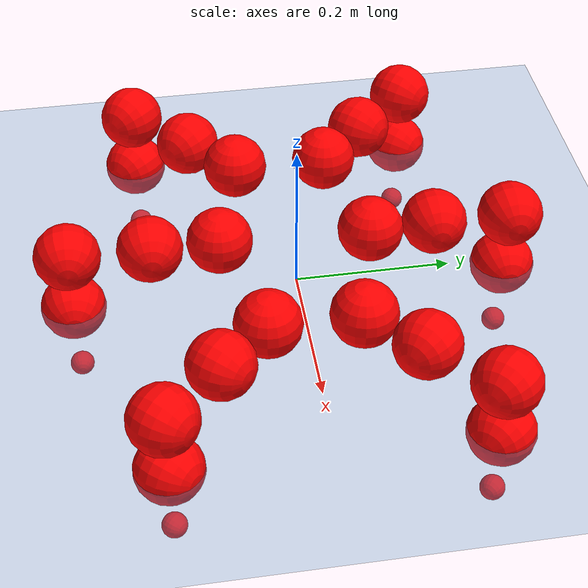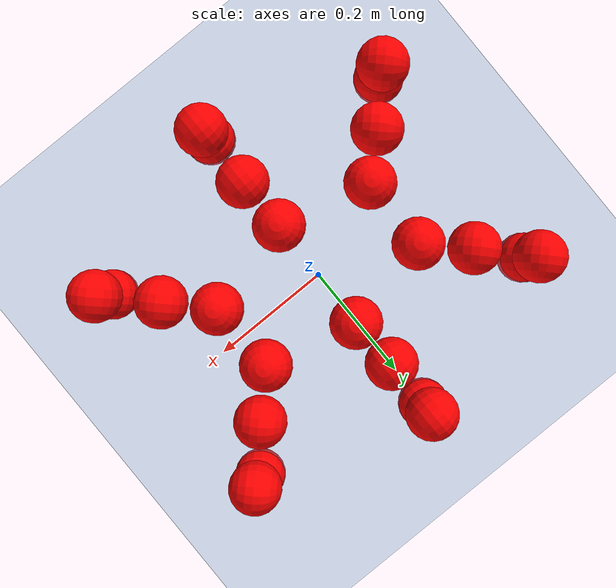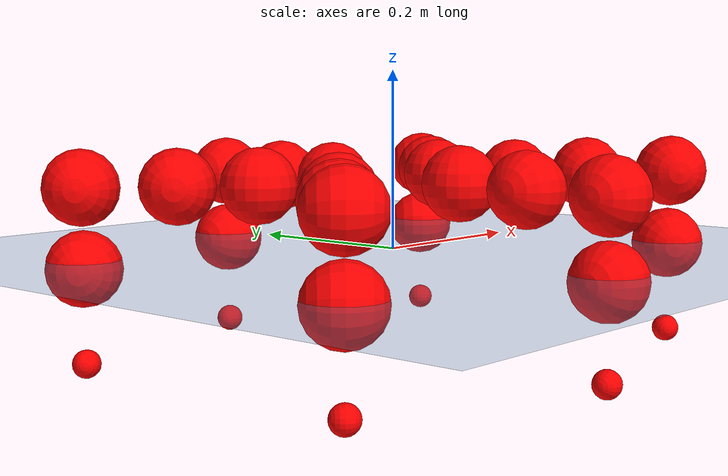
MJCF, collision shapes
<mujoco model="Golem">
  <compiler angle="radian" assetdir="assets" balanceinertia="true" inertiafromgeom="false"/>

  <option timestep="0.005" density="1.2" viscosity="2e-05"/>

  <size nkey="1"/>

  <visual>
    <quality shadowsize="8192"/>
    <map shadowclip="0.5"/>
  </visual>

  <default>
    <default class="/">
      <joint armature="0.01" damping="0.01" frictionloss="0.01"/>
      <geom contype="0" conaffinity="0" group="1" solref="-1000 -80"/>
      <site size="0.01 0.005 0.005" group="5"/>
      <general forcelimited="true" biastype="affine" gainprm="25" biasprm="0 -25 -0.5"/>
      <default class="visual">
        <geom type="mesh" group="2"/>
      </default>
      <default class="collision">
        <geom group="3"/>
      </default>
      <default class="foot">
        <geom size="0.01 0 0" condim="6" group="4" priority="1" solimp="0.015 1 0.01"/>
      </default>
      <default class="reward_collision_sphere">
        <geom group="5" rgba="1 0 0 1"/>
      </default>
    </default>
  </default>

  <asset>
    <texture type="skybox" colorspace="auto" name="//unnamed_texture_0" builtin="gradient" rgb1="0.95 0.95 0.95" rgb2="0.95 0.95 0.95" width="100" height="600"/>
    <texture type="2d" colorspace="auto" name="texplane" builtin="checker" rgb1="0.345 0.575 0.748" rgb2="0.345 0.575 0.748" markrgb="1 1 1" width="512" height="512"/>
    <material name="MatPlane" class="/" texture="texplane" texuniform="true" texrepeat="2 2" specular="0.9"/>
    <mesh name="body" class="/" file="body.stl" scale="0.001 0.001 0.001"/>
    <mesh name="coxa" class="/" file="coxa.stl" scale="0.001 0.001 0.001"/>
    <mesh name="femur" class="/" file="femur.stl" scale="0.001 0.001 0.001"/>
    <mesh name="tibia" class="/" file="tibia.stl" scale="0.001 0.001 0.001"/>
    <mesh name="tarsus" class="/" file="tarsus.stl" scale="0.001 0.001 0.001"/>
  </asset>

  <worldbody>
    <geom name="floor" class="/" size="100 100 0.125" type="plane" group="0" material="MatPlane"/>
    <light name="toplight_shadow" class="/" pos="0 0 5" dir="0.0990148 0.0990148 -0.990148" type="directional" ambient="0.04 0.04 0.04" diffuse="0.55 0.55 0.55" specular="0.12 0.12 0.12"/>
    <light name="toplight_fill" class="/" pos="0 0 5" dir="0.0990148 0.0990148 -0.990148" type="directional" castshadow="false" ambient="0.04 0.04 0.04" diffuse="0.3 0.3 0.3" specular="0.08 0.08 0.08"/>
    <body name="trunk" pos="8.36475e-05 -0.000869657 -0.00239171" quat="1 -0.000481718 -0.000536511 0.000161693">
      <inertial pos="0.00318369 -0.00310623 -0.000332547" quat="0.999925 0.000371154 -0.0114806 0.00427435" mass="3.96228" diaginertia="0.00763667 0.00673132 0.0270453"/>
      <joint name="//unnamed_joint_0" type="free"/>
      <geom name="//unnamed_geom_1" class="/" pos="0 0 0.078108" quat="1 0 0 0" type="mesh" rgba="0.9 0.9 0.9 1" mesh="body"/>
      <site name="imu" class="/" pos="0.114246 0.00630859 0.118484" size="0.0103787"/>
      <camera name="track" class="/" pos="0 -1.87399 0" quat="0.707107 0.707107 0 0" mode="trackcom"/>
      <camera name="ego_camera" class="/" pos="0.124304 0 0.122044" quat="-0.5 -0.5 0.5 0.5"/>
      <body name="coxa_RR" pos="-0.170935 -0.0784841 0.0787153" quat="0.382999 -0.000313049 0.000204403 -0.923749">
        <inertial pos="0.00180067 0.00239826 -0.00244167" quat="0.999903 0.0029093 0.00178834 -0.0134727" mass="0.220413" diaginertia="0.0075707 0.00708589 0.0259238"/>
        <joint name="coxa_joint_RR" class="/" pos="0 0 0" axis="-0.00676367 -0.00476272 -0.999966" stiffness="0.00735357" range="-3.08355 3.09169" armature="0.0108117" damping="0" frictionloss="0.0117545"/>
        <geom name="//unnamed_geom_2" class="/" type="mesh" rgba="0.2 0.2 0.2 1" mesh="coxa"/>
        <geom name="//unnamed_geom_3" class="reward_collision_sphere" size="0.0415149" pos="-0.0286856 0 0"/>
        <body name="femur_RR" pos="0.0544234 -0.00216246 -0.00100068" quat="0.500008 -0.499995 0.500003 0.499994">
          <inertial pos="-0.000295745 -0.000474977 0.00269568" quat="0.999924 -0.0122935 0.000400269 0.000198453" mass="0.219529" diaginertia="0.00816727 0.00689838 0.0267497"/>
          <joint name="femur_joint_RR" class="/" pos="0 0 0" axis="0.000113646 -0.000526016 -1" range="-3.09099 3.08993" armature="0.0109579" damping="0.0177387" frictionloss="0.0102278"/>
          <geom name="//unnamed_geom_4" class="/" type="mesh" rgba="0.9 0.9 0.9 1" mesh="femur"/>
          <geom name="//unnamed_geom_5" class="reward_collision_sphere" size="0.0415149"/>
          <body name="tibia_RR" pos="-0.00201501 -0.0987502 0.00167792" quat="-8.21889e-05 1 -0.000160319 -0.00027997">
            <inertial pos="0.000341067 0.000179103 0.00102244" quat="1 -0.000765005 -0.000456979 -0.000374887" mass="0.220636" diaginertia="0.00787927 0.0071146 0.0265431"/>
            <joint name="tibia_joint_RR" class="/" pos="0 0 0" axis="0.00165716 -0.00234521 0.999996" range="-3.13691 3.16563" armature="0.0088658" damping="0.0156097" frictionloss="0.00975736"/>
            <geom name="//unnamed_geom_6" class="/" type="mesh" rgba="0.2 0.2 0.2 1" mesh="tibia"/>
            <geom name="//unnamed_geom_7" class="reward_collision_sphere" size="0.0415149"/>
            <body name="tarsus_RR" pos="0.08356 0.00170148 0.000285134" quat="0.999999 0.0013585 -0.000155589 -8.85013e-05">
              <inertial pos="0.0605296 -0.000633336 0.00216001" quat="0.506213 0.493024 0.492998 0.507571" mass="0.221425" diaginertia="0.00801114 0.00696115 0.0264366"/>
              <joint name="tarsus_joint_RR" class="/" pos="0 0 0" axis="0.00872331 0.00869895 0.999924" range="-3.19348 3.14722" armature="0.00913839" damping="0.0153951" frictionloss="0.0105307"/>
              <geom name="//unnamed_geom_8" class="/" type="mesh" rgba="0.9 0.9 0.9 1" mesh="tarsus"/>
              <geom name="foot_1" class="foot" size="0.00992932" pos="0.107093 0 0" quat="0 -0.707107 0 0.707107"/>
              <geom name="//unnamed_geom_10" class="reward_collision_sphere" size="0.0415149"/>
              <geom name="//unnamed_geom_11" class="reward_collision_sphere" size="0.0155681" pos="0.10279 0 0"/>
              <site name="foot_1" class="foot" pos="0.107093 0 0" quat="0 -0.707107 0 0.707107" size="0.0103787"/>
            </body>
          </body>
        </body>
      </body>
      <body name="coxa_RM" pos="-0.00101026 -0.124342 0.0806074" quat="0.70685 -0.000504281 0.000394056 -0.707363">
        <inertial pos="-0.000158696 0.000497296 -0.00110696" quat="0.999994 -0.00115936 -0.00311023 0.000616033" mass="0.213705" diaginertia="0.00783489 0.00715399 0.0274011"/>
        <joint name="coxa_joint_RM" class="/" pos="0 0 0" axis="0.00153819 0.00209836 -0.999997" range="-3.13361 3.08354" armature="0.00929522" damping="0.0220872" frictionloss="0.0115942"/>
        <geom name="//unnamed_geom_12" class="/" type="mesh" rgba="0.2 0.2 0.2 1" mesh="coxa"/>
        <geom name="//unnamed_geom_13" class="reward_collision_sphere" size="0.0415149" pos="-0.0286856 0 0"/>
        <body name="femur_RM" pos="0.0579281 0.00105935 -0.00180526" quat="0.5 -0.499994 0.500019 0.499986">
          <inertial pos="-0.000591274 0.00199465 -0.000550064" quat="0.999991 -0.00212976 -0.003147 -0.00170093" mass="0.231992" diaginertia="0.00791083 0.00733628 0.026222"/>
          <joint name="femur_joint_RM" class="/" pos="0 0 0" axis="0.00239437 0.000735758 -0.999997" stiffness="0.000503418" range="-3.11105 3.19473" armature="0.0114663" damping="0.0205546" frictionloss="0.0107505"/>
          <geom name="//unnamed_geom_14" class="/" type="mesh" rgba="0.9 0.9 0.9 1" mesh="femur"/>
          <geom name="//unnamed_geom_15" class="reward_collision_sphere" size="0.0415149"/>
          <body name="tibia_RM" pos="2.4583e-05 -0.101146 -0.000850634" quat="2.20753e-06 1 6.01243e-06 -9.10871e-06">
            <inertial pos="-0.000652576 0.000261511 0.00176133" quat="0.999979 -0.00557288 0.000510979 0.0033721" mass="0.224577" diaginertia="0.00810383 0.00724346 0.0261746"/>
            <joint name="tibia_joint_RM" class="/" pos="0 0 0" axis="0.000409608 0.000302331 1" stiffness="0.000737372" range="-3.08518 3.18349" armature="0.0103662" damping="0.0191291" frictionloss="0.0105031"/>
            <geom name="//unnamed_geom_16" class="/" type="mesh" rgba="0.2 0.2 0.2 1" mesh="tibia"/>
            <geom name="//unnamed_geom_17" class="reward_collision_sphere" size="0.0415149"/>
            <body name="tarsus_RM" pos="0.0855497 0.000902562 0.00200269" quat="0.999999 -0.000264057 -0.000985454 -0.000319868">
              <inertial pos="0.0568224 -0.00192012 -0.000331559" quat="0.50202 0.496987 0.498784 0.50219" mass="0.229469" diaginertia="0.00810442 0.0072588 0.0270287"/>
              <joint name="tarsus_joint_RM" class="/" pos="0 0 0" axis="0.0081301 0.0104144 0.999913" range="-3.08666 3.11031" armature="0.00892713" damping="0.00880586" frictionloss="0.0112654"/>
              <geom name="//unnamed_geom_18" class="/" type="mesh" rgba="0.9 0.9 0.9 1" mesh="tarsus"/>
              <geom name="foot_2" class="foot" size="0.00939826" pos="0.107093 0 0" quat="0 -0.707107 0 0.707107"/>
              <geom name="//unnamed_geom_20" class="reward_collision_sphere" size="0.0415149"/>
              <geom name="//unnamed_geom_21" class="reward_collision_sphere" size="0.0155681" pos="0.10279 0 0"/>
              <site name="foot_2" class="foot" pos="0.107093 0 0" quat="0 -0.707107 0 0.707107" size="0.0103787"/>
            </body>
          </body>
        </body>
      </body>
      <body name="coxa_RF" pos="0.172939 -0.076792 0.0796611" quat="0.923878 -0.000106525 -7.43947e-05 -0.382687">
        <inertial pos="-1.74766e-05 -0.000551905 -0.00166089" quat="0.999923 0.00785361 0.00931461 0.00249167" mass="0.220907" diaginertia="0.00784951 0.00711843 0.0263863"/>
        <joint name="coxa_joint_RF" class="/" pos="0 0 0" axis="-0.00514283 0.00742111 -0.999959" range="-3.14971 3.08957" armature="0.00992637" damping="0.00444794" frictionloss="0.0106913"/>
        <geom name="//unnamed_geom_22" class="/" type="mesh" rgba="0.2 0.2 0.2 1" mesh="coxa"/>
        <geom name="//unnamed_geom_23" class="reward_collision_sphere" size="0.0415149" pos="-0.0286856 0 0"/>
        <body name="femur_RF" pos="0.0567597 -0.00152257 0.00209478" quat="0.499335 -0.500293 0.500112 0.50026">
          <inertial pos="0.000635369 -0.00105207 -0.00182447" quat="0.999908 -0.00617999 0.0104237 0.00611081" mass="0.221807" diaginertia="0.00766121 0.00698498 0.0262769"/>
          <joint name="femur_joint_RF" class="/" pos="0 0 0" axis="-0.00419991 -0.0130145 -0.999906" range="-3.08403 3.1474" armature="0.0101114" damping="0.00900821" frictionloss="0.010462"/>
          <geom name="//unnamed_geom_24" class="/" type="mesh" rgba="0.9 0.9 0.9 1" mesh="femur"/>
          <geom name="//unnamed_geom_25" class="reward_collision_sphere" size="0.0415149"/>
          <body name="tibia_RF" pos="-0.00137895 -0.101198 0.000817157" quat="0.00132564 0.999999 4.98378e-05 -0.000178988">
            <inertial pos="0.000311881 -0.000398817 -0.00152418" quat="0.999994 -0.00209659 0.00160295 0.00238936" mass="0.234511" diaginertia="0.00783707 0.00718705 0.0273031"/>
            <joint name="tibia_joint_RF" class="/" pos="0 0 0" axis="0.00105277 0.00198295 0.999997" stiffness="0.0208438" range="-3.1954 3.12229" armature="0.0098505" damping="0.0351943" frictionloss="0.00903875"/>
            <geom name="//unnamed_geom_26" class="/" type="mesh" rgba="0.2 0.2 0.2 1" mesh="tibia"/>
            <geom name="//unnamed_geom_27" class="reward_collision_sphere" size="0.0415149"/>
            <body name="tarsus_RF" pos="0.0856474 -0.00307564 0.000658451" quat="1 4.1902e-05 -3.25053e-05 -3.89049e-05">
              <inertial pos="0.0600515 0.00110893 8.6053e-05" quat="0.496981 0.498417 0.493593 0.510838" mass="0.213618" diaginertia="0.00744413 0.00685882 0.0263465"/>
              <joint name="tarsus_joint_RF" class="/" pos="0 0 0" axis="0.00111411 -0.00277392 0.999996" stiffness="0.0076441" range="-3.15118 3.10774" armature="0.00928693" damping="0.00839303" frictionloss="0.0117634"/>
              <geom name="//unnamed_geom_28" class="/" type="mesh" rgba="0.9 0.9 0.9 1" mesh="tarsus"/>
              <geom name="foot_3" class="foot" size="0.0113169" pos="0.107093 0 0" quat="0 -0.707107 0 0.707107"/>
              <geom name="//unnamed_geom_30" class="reward_collision_sphere" size="0.0415149"/>
              <geom name="//unnamed_geom_31" class="reward_collision_sphere" size="0.0155681" pos="0.10279 0 0"/>
              <site name="foot_3" class="foot" pos="0.107093 0 0" quat="0 -0.707107 0 0.707107" size="0.0103787"/>
            </body>
          </body>
        </body>
      </body>
      <body name="coxa_LR" pos="-0.169104 0.080671 0.0793172" quat="0.382906 0.000447681 -0.000246167 0.923787">
        <inertial pos="-0.00264005 0.00125088 -0.000881057" quat="0.999976 0.00326547 0.00311927 -0.00518016" mass="0.229159" diaginertia="0.00786872 0.00712095 0.027573"/>
        <joint name="coxa_joint_LR" class="/" pos="0 0 0" axis="-0.00966151 -0.00395715 -0.999945" stiffness="0.0141539" range="-3.19522 3.14954" armature="0.0103825" damping="0.013973" frictionloss="0.0114402"/>
        <geom name="//unnamed_geom_32" class="/" type="mesh" rgba="0.2 0.2 0.2 1" mesh="coxa"/>
        <geom name="//unnamed_geom_33" class="reward_collision_sphere" size="0.0415149" pos="-0.0286856 0 0"/>
        <body name="femur_LR" pos="0.0572144 0.00175237 -0.000246344" quat="0.49916 -0.499929 0.499962 0.500948">
          <inertial pos="-0.000186144 0.0019954 0.00238815" quat="1 -0.000242721 -5.42918e-05 9.75465e-05" mass="0.210917" diaginertia="0.00799146 0.00685051 0.0256792"/>
          <joint name="femur_joint_LR" class="/" pos="0 0 0" axis="0.00707797 -0.00158845 0.999974" range="-3.19576 3.19289" armature="0.0098365" damping="0.0123603" frictionloss="0.00989621"/>
          <geom name="//unnamed_geom_34" class="/" type="mesh" rgba="0.9 0.9 0.9 1" mesh="femur"/>
          <geom name="//unnamed_geom_35" class="reward_collision_sphere" size="0.0415149"/>
          <body name="tibia_LR" pos="0.000347928 -0.101278 -0.00232803" quat="0.00122172 0.999999 -0.000492602 -8.48589e-05">
            <inertial pos="-0.0026715 0.00265182 0.00174451" quat="0.999941 0.00907797 0.00111098 0.00588653" mass="0.230213" diaginertia="0.00829542 0.00763193 0.0266923"/>
            <joint name="tibia_joint_LR" class="/" pos="0 0 0" axis="0.0038555 0.00442528 -0.999983" range="-3.14151 3.17861" armature="0.00950304" damping="0" frictionloss="0.010375"/>
            <geom name="//unnamed_geom_36" class="/" type="mesh" rgba="0.2 0.2 0.2 1" mesh="tibia"/>
            <geom name="//unnamed_geom_37" class="reward_collision_sphere" size="0.0415149"/>
            <body name="tarsus_LR" pos="0.0865542 -0.00166624 -0.000444218" quat="1 -9.93623e-05 6.19447e-05 -2.5194e-05">
              <inertial pos="0.0572417 -0.00084552 0.00129066" quat="0.499631 0.500202 0.500824 0.499342" mass="0.215441" diaginertia="0.00772447 0.00689588 0.0271171"/>
              <joint name="tarsus_joint_LR" class="/" pos="0 0 0" axis="0.00277663 0.00383976 -0.999989" stiffness="0.0100186" range="-3.17175 3.19025" armature="0.0103696" damping="0.00787511" frictionloss="0.00903747"/>
              <geom name="//unnamed_geom_38" class="/" type="mesh" rgba="0.9 0.9 0.9 1" mesh="tarsus"/>
              <geom name="foot_4" class="foot" size="0.0114404" pos="0.107093 0 0" quat="0.707107 0 -0.707107 0"/>
              <geom name="//unnamed_geom_40" class="reward_collision_sphere" size="0.0415149"/>
              <geom name="//unnamed_geom_41" class="reward_collision_sphere" size="0.0155681" pos="0.10279 0 0"/>
              <site name="foot_4" class="foot" pos="0.107093 0 0" quat="0.707107 0 -0.707107 0" size="0.0103787"/>
            </body>
          </body>
        </body>
      </body>
      <body name="coxa_LM" pos="0.0014617 0.123197 0.0773232" quat="0.706656 -0.000471077 0.000714555 0.707557">
        <inertial pos="-0.00048573 -0.000734586 -0.000126188" quat="0.999984 -0.0052321 -0.00202322 0.00102697" mass="0.221771" diaginertia="0.00849524 0.00746613 0.0276687"/>
        <joint name="coxa_joint_LM" class="/" pos="0 0 0" axis="0.0128742 0.00409333 -0.999909" range="-3.16238 3.16" armature="0.0117683" damping="0.009734" frictionloss="0.0105184"/>
        <geom name="//unnamed_geom_42" class="/" type="mesh" rgba="0.2 0.2 0.2 1" mesh="coxa"/>
        <geom name="//unnamed_geom_43" class="reward_collision_sphere" size="0.0415149" pos="-0.0286856 0 0"/>
        <body name="femur_LM" pos="0.0539314 0.00257857 -0.000456205" quat="0.49986 -0.499752 0.500269 0.500118">
          <inertial pos="-0.00189526 0.000749918 0.000902844" quat="0.999956 -0.00212653 0.00574754 -0.00710853" mass="0.218504" diaginertia="0.00769495 0.00699717 0.0258051"/>
          <joint name="femur_joint_LM" class="/" pos="0 0 0" axis="-0.0110434 -0.00374184 0.999932" stiffness="0.00917195" range="-3.10187 3.15155" armature="0.00917308" damping="0.00985704" frictionloss="0.00973298"/>
          <geom name="//unnamed_geom_44" class="/" type="mesh" rgba="0.9 0.9 0.9 1" mesh="femur"/>
          <geom name="//unnamed_geom_45" class="reward_collision_sphere" size="0.0415149"/>
          <body name="tibia_LM" pos="-0.000756662 -0.0989493 -0.000621663" quat="0.000432455 0.999999 0.000985504 -0.00104374">
            <inertial pos="0.00294676 -0.000741759 -0.000111477" quat="0.999989 0.00198864 -0.00414582 -0.00104691" mass="0.234619" diaginertia="0.00808578 0.00733102 0.0274265"/>
            <joint name="tibia_joint_LM" class="/" pos="0 0 0" axis="0.00548804 0.00380802 -0.999978" stiffness="0.00534522" range="-3.11164 3.08321" armature="0.0095044" damping="0.0164504" frictionloss="0.0111482"/>
            <geom name="//unnamed_geom_46" class="/" type="mesh" rgba="0.2 0.2 0.2 1" mesh="tibia"/>
            <geom name="//unnamed_geom_47" class="reward_collision_sphere" size="0.0415149"/>
            <body name="tarsus_LM" pos="0.083274 -0.00186269 -0.000418462" quat="1 7.94884e-05 0.000162149 1.86554e-05">
              <inertial pos="0.0544408 -0.00110955 -0.000715989" quat="0.496641 0.492151 0.500188 0.51083" mass="0.229483" diaginertia="0.00790219 0.00745871 0.026575"/>
              <joint name="tarsus_joint_LM" class="/" pos="0 0 0" axis="0.00897701 -0.01055 -0.999904" range="-3.13524 3.13117" armature="0.00966661" damping="0.00468724" frictionloss="0.010101"/>
              <geom name="//unnamed_geom_48" class="/" type="mesh" rgba="0.9 0.9 0.9 1" mesh="tarsus"/>
              <geom name="foot_5" class="foot" size="0.0114818" pos="0.107093 0 0" quat="0.707107 0 -0.707107 0"/>
              <geom name="//unnamed_geom_50" class="reward_collision_sphere" size="0.0415149"/>
              <geom name="//unnamed_geom_51" class="reward_collision_sphere" size="0.0155681" pos="0.10279 0 0"/>
              <site name="foot_5" class="foot" pos="0.107093 0 0" quat="0.707107 0 -0.707107 0" size="0.0103787"/>
            </body>
          </body>
        </body>
      </body>
      <body name="coxa_LF" pos="0.170277 0.0780664 0.0763675" quat="0.923966 0.000264175 -0.000974192 0.382474">
        <inertial pos="-9.36995e-05 0.00112394 -0.00209299" quat="0.999934 -0.00486077 -0.00930419 -0.00460009" mass="0.221624" diaginertia="0.00782658 0.00715863 0.0271202"/>
        <joint name="coxa_joint_LF" class="/" pos="0 0 0" axis="0.000475162 0.000613511 -1" range="-3.19298 3.13412" armature="0.0118521" damping="0.0216176" frictionloss="0.00943034"/>
        <geom name="//unnamed_geom_52" class="/" type="mesh" rgba="0.2 0.2 0.2 1" mesh="coxa"/>
        <geom name="//unnamed_geom_53" class="reward_collision_sphere" size="0.0415149" pos="-0.0286856 0 0"/>
        <body name="femur_LF" pos="0.0578363 0.000432338 0.000183004" quat="0.499286 -0.500465 0.500188 0.50006">
          <inertial pos="0.000471487 -0.00278888 0.0022551" quat="1 -0.00012004 -0.000415013 -0.000458959" mass="0.227708" diaginertia="0.0079219 0.00711703 0.0268365"/>
          <joint name="femur_joint_LF" class="/" pos="0 0 0" axis="0.000523727 0.00317801 0.999995" range="-3.19563 3.17253" armature="0.0110669" damping="0" frictionloss="0.0108578"/>
          <geom name="//unnamed_geom_54" class="/" type="mesh" rgba="0.9 0.9 0.9 1" mesh="femur"/>
          <geom name="//unnamed_geom_55" class="reward_collision_sphere" size="0.0415149"/>
          <body name="tibia_LF" pos="0.00114871 -0.101911 0.00250903" quat="0.000518363 0.999999 -0.000459321 -0.00117714">
            <inertial pos="0.00245105 0.000697393 -0.00273622" quat="0.999995 0.00227056 0.00200911 -0.00013847" mass="0.22512" diaginertia="0.00758882 0.00713999 0.025586"/>
            <joint name="tibia_joint_LF" class="/" pos="0 0 0" axis="0.0058942 -0.0085696 -0.999946" stiffness="0.0138793" range="-3.15292 3.10656" armature="0.00899243" damping="0.0169935" frictionloss="0.0114941"/>
            <geom name="//unnamed_geom_56" class="/" type="mesh" rgba="0.2 0.2 0.2 1" mesh="tibia"/>
            <geom name="//unnamed_geom_57" class="reward_collision_sphere" size="0.0415149"/>
            <body name="tarsus_LF" pos="0.0814997 0.00144461 -0.00178968" quat="1 2.16303e-05 2.78761e-05 -6.01653e-05">
              <inertial pos="0.0588281 0.0025377 -0.0021724" quat="0.50309 0.500484 0.501931 0.494451" mass="0.214591" diaginertia="0.00788446 0.00713486 0.0269266"/>
              <joint name="tarsus_joint_LF" class="/" pos="0 0 0" axis="-0.00174406 0.00874352 -0.99996" stiffness="0.0313738" range="-3.08449 3.09775" armature="0.0105926" damping="0.020085" frictionloss="0.00892863"/>
              <geom name="//unnamed_geom_58" class="/" type="mesh" rgba="0.9 0.9 0.9 1" mesh="tarsus"/>
              <geom name="foot_6" class="foot" size="0.0108705" pos="0.107093 0 0" quat="0.707107 0 -0.707107 0"/>
              <geom name="//unnamed_geom_60" class="reward_collision_sphere" size="0.0415149"/>
              <geom name="//unnamed_geom_61" class="reward_collision_sphere" size="0.0155681" pos="0.10279 0 0"/>
              <site name="foot_6" class="foot" pos="0.107093 0 0" quat="0.707107 0 -0.707107 0" size="0.0103787"/>
            </body>
          </body>
        </body>
      </body>
    </body>
  </worldbody>

  <contact>
    <pair class="/" geom1="floor" geom2="foot_1" name="//unnamed_contact_0"/>
    <pair class="/" geom1="floor" geom2="foot_2" name="//unnamed_contact_1"/>
    <pair class="/" geom1="floor" geom2="foot_3" name="//unnamed_contact_2"/>
    <pair class="/" geom1="floor" geom2="foot_4" name="//unnamed_contact_3"/>
    <pair class="/" geom1="floor" geom2="foot_5" name="//unnamed_contact_4"/>
    <pair class="/" geom1="floor" geom2="foot_6" name="//unnamed_contact_5"/>
  </contact>

  <actuator>
    <general name="coxa_joint_RR" class="/" joint="coxa_joint_RR" forcerange="-7.50433 7.50433" gainprm="24.9155" biasprm="0 -24.9155 -0.570565"/>
    <general name="femur_joint_RR" class="/" joint="femur_joint_RR" forcerange="-8.17726 8.17726" gainprm="24.9155" biasprm="0 -24.9155 -0.570565"/>
    <general name="tibia_joint_RR" class="/" joint="tibia_joint_RR" forcerange="-7.55073 7.55073" gainprm="24.9155" biasprm="0 -24.9155 -0.570565"/>
    <general name="tarsus_joint_RR" class="/" joint="tarsus_joint_RR" forcerange="-7.99852 7.99852" gainprm="24.9155" biasprm="0 -24.9155 -0.570565"/>
    <general name="coxa_joint_RM" class="/" joint="coxa_joint_RM" forcerange="-6.80631 6.80631" gainprm="24.9155" biasprm="0 -24.9155 -0.570565"/>
    <general name="femur_joint_RM" class="/" joint="femur_joint_RM" forcerange="-7.97992 7.97992" gainprm="24.9155" biasprm="0 -24.9155 -0.570565"/>
    <general name="tibia_joint_RM" class="/" joint="tibia_joint_RM" forcerange="-8.22543 8.22543" gainprm="24.9155" biasprm="0 -24.9155 -0.570565"/>
    <general name="tarsus_joint_RM" class="/" joint="tarsus_joint_RM" forcerange="-8.365 8.365" gainprm="24.9155" biasprm="0 -24.9155 -0.570565"/>
    <general name="coxa_joint_RF" class="/" joint="coxa_joint_RF" forcerange="-7.14988 7.14988" gainprm="24.9155" biasprm="0 -24.9155 -0.570565"/>
    <general name="femur_joint_RF" class="/" joint="femur_joint_RF" forcerange="-7.71074 7.71074" gainprm="24.9155" biasprm="0 -24.9155 -0.570565"/>
    <general name="tibia_joint_RF" class="/" joint="tibia_joint_RF" forcerange="-8.31351 8.31351" gainprm="24.9155" biasprm="0 -24.9155 -0.570565"/>
    <general name="tarsus_joint_RF" class="/" joint="tarsus_joint_RF" forcerange="-7.81258 7.81258" gainprm="24.9155" biasprm="0 -24.9155 -0.570565"/>
    <general name="coxa_joint_LR" class="/" joint="coxa_joint_LR" forcerange="-7.49313 7.49313" gainprm="24.9155" biasprm="0 -24.9155 -0.570565"/>
    <general name="femur_joint_LR" class="/" joint="femur_joint_LR" forcerange="-7.6119 7.6119" gainprm="24.9155" biasprm="0 -24.9155 -0.570565"/>
    <general name="tibia_joint_LR" class="/" joint="tibia_joint_LR" forcerange="-7.6396 7.6396" gainprm="24.9155" biasprm="0 -24.9155 -0.570565"/>
    <general name="tarsus_joint_LR" class="/" joint="tarsus_joint_LR" forcerange="-7.31453 7.31453" gainprm="24.9155" biasprm="0 -24.9155 -0.570565"/>
    <general name="coxa_joint_LM" class="/" joint="coxa_joint_LM" forcerange="-7.14428 7.14428" gainprm="24.9155" biasprm="0 -24.9155 -0.570565"/>
    <general name="femur_joint_LM" class="/" joint="femur_joint_LM" forcerange="-7.23474 7.23474" gainprm="24.9155" biasprm="0 -24.9155 -0.570565"/>
    <general name="tibia_joint_LM" class="/" joint="tibia_joint_LM" forcerange="-7.51289 7.51289" gainprm="24.9155" biasprm="0 -24.9155 -0.570565"/>
    <general name="tarsus_joint_LM" class="/" joint="tarsus_joint_LM" forcerange="-8.35481 8.35481" gainprm="24.9155" biasprm="0 -24.9155 -0.570565"/>
    <general name="coxa_joint_LF" class="/" joint="coxa_joint_LF" forcerange="-6.79562 6.79562" gainprm="24.9155" biasprm="0 -24.9155 -0.570565"/>
    <general name="femur_joint_LF" class="/" joint="femur_joint_LF" forcerange="-7.68436 7.68436" gainprm="24.9155" biasprm="0 -24.9155 -0.570565"/>
    <general name="tibia_joint_LF" class="/" joint="tibia_joint_LF" forcerange="-7.56464 7.56464" gainprm="24.9155" biasprm="0 -24.9155 -0.570565"/>
    <general name="tarsus_joint_LF" class="/" joint="tarsus_joint_LF" forcerange="-7.70067 7.70067" gainprm="24.9155" biasprm="0 -24.9155 -0.570565"/>
  </actuator>

  <sensor>
    <gyro site="imu" name="imu_angular_velocity"/>
    <velocimeter site="imu" name="imu_linear_velocity"/>
    <framelinvel objtype="site" objname="foot_1" name="foot_1_global_linear_velocity"/>
    <framelinvel objtype="site" objname="foot_2" name="foot_2_global_linear_velocity"/>
    <framelinvel objtype="site" objname="foot_3" name="foot_3_global_linear_velocity"/>
    <framelinvel objtype="site" objname="foot_4" name="foot_4_global_linear_velocity"/>
    <framelinvel objtype="site" objname="foot_5" name="foot_5_global_linear_velocity"/>
    <framelinvel objtype="site" objname="foot_6" name="foot_6_global_linear_velocity"/>
  </sensor>

  <keyframe>
    <key name="home" qpos="0 0 0.1457 1 0 0 0 0 0 0 0 0 0 0 0 0 0 0 0 0 0 0 0 0 0 0 0 0 0 0 0"/>
  </keyframe>
</mujoco>
